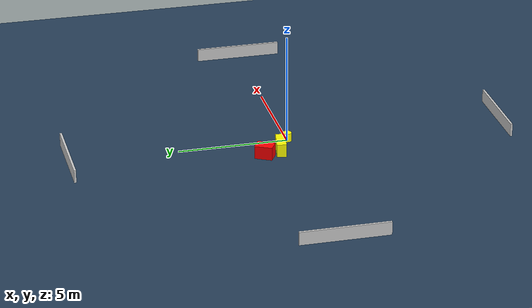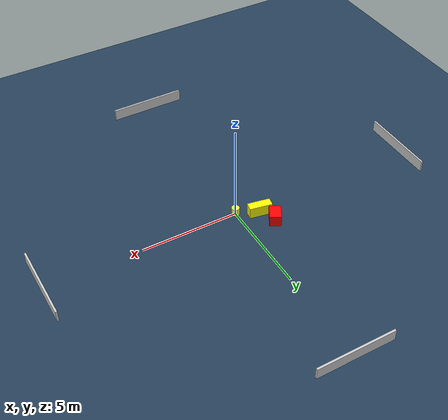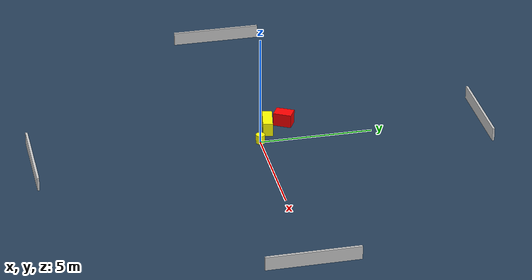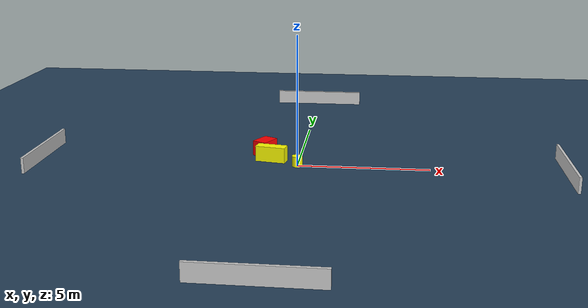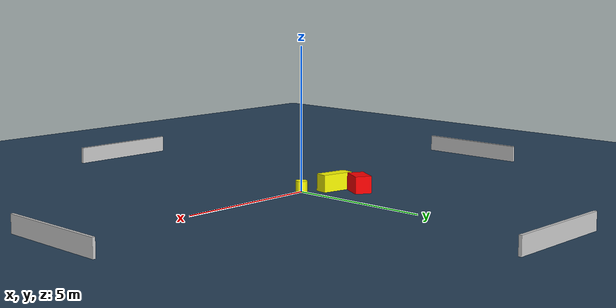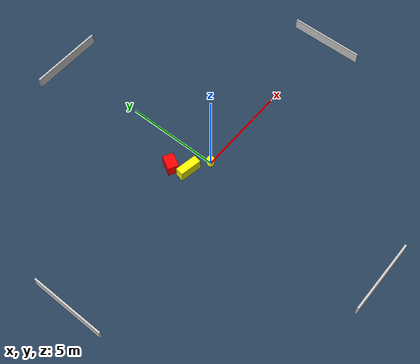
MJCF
<?xml version="1.0" ?>
<mujoco model="generated_environment">
  <option timestep="0.01" integrator="RK4" cone="elliptic"/>
  <default>
    <geom density="1"/>
  </default>
  <asset>
    <texture builtin="gradient" height="3072" name="skybox" rgb1="0.3 0.5 0.7" rgb2="0 0 0" type="skybox" width="512"/>
    <texture builtin="checker" height="300" name="groundplane" rgb1="0.2 0.3 0.4" rgb2="0.1 0.2 0.3" type="2d" width="300"/>
    <material name="groundplane" reflectance="0.2" texrepeat="5 5" texture="groundplane"/>
  </asset>
  <worldbody>
    <light dir="0 0 -1" directional="true" pos="0 0 1.5"/>
    <geom condim="3" friction="0.5 0.005 0.001" material="groundplane" name="floor" pos="0 0 0" size="0 0 0.05" type="plane"/>
    <body name="walls">
      <geom name="wall_1" condim="4" pos="-10.0 0.0 0.3" rgba="0.800000011920929 0.800000011920929 0.800000011920929 1.0" size="0.05 2.0 0.3" type="box"/>
      <geom name="wall_2" condim="4" pos="10.0 0.0 0.3" rgba="0.800000011920929 0.800000011920929 0.800000011920929 1.0" size="0.05 2.0 0.3" type="box"/>
      <geom name="wall_3" condim="4" pos="0.0 -10.0 0.3" rgba="0.800000011920929 0.800000011920929 0.800000011920929 1.0" size="2.0 0.05 0.3" type="box"/>
      <geom name="wall_4" condim="4" pos="0.0 10.0 0.3" rgba="0.800000011920929 0.800000011920929 0.800000011920929 1.0" size="2.0 0.05 0.3" type="box"/>
    </body>
    <body name="robot">
      <joint name="joint_x" type="slide" pos="0 0 0" axis="1 0 0"/>
      <joint name="joint_y" type="slide" pos="0 0 0" axis="0 1 0"/>
      <geom name="robot" type="cylinder" pos="0.0 0.0 0.2" size="0.2 0.2 0.0" mass="5.0" friction="1.0 0.005 0.0001" condim="4" rgba="1.0 1.0 0.0 1.0"/>
    </body>
    <body name="obstacle_1_movable">
      <geom name="obstacle_1_movable" condim="4" pos="-1.0606561153081224 0.5478745489935799 0.3" euler="0 0 349.89396816789673" friction="0.0 0.005 0.001" rgba="1.0 1.0 0.0 1.0" size="0.5857605388687249 0.2177166710228308 0.3" type="box" mass="0.1"/>
      <joint type="free"/>
    </body>
    <body name="obstacle_2_static">
      <geom name="obstacle_2_static" condim="4" pos="-1.4315954177720904 1.3728564769120304 0.3" euler="0 0 61.34667752373201" friction="0.0 0.005 0.001" rgba="1.0 0.0 0.0 1.0" size="0.40490942776011996 0.2898192435679967 0.3" type="box"/>
    </body>
  </worldbody>
  <actuator>
    <motor name="actuator_x" joint="joint_x" gear="1" ctrlrange="-1 1"/>
    <motor name="actuator_y" joint="joint_y" gear="1" ctrlrange="-1 1"/>
  </actuator>
</mujoco>
